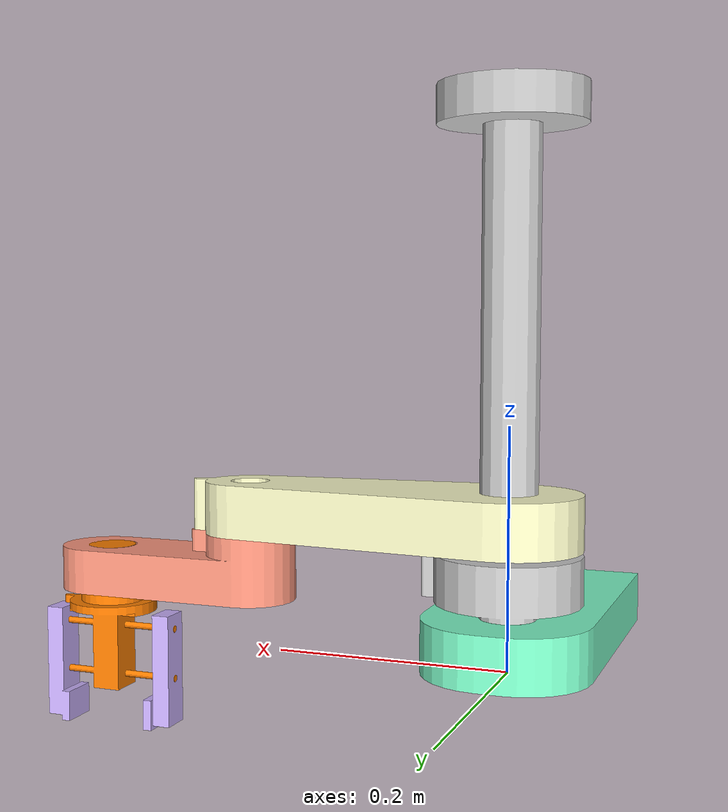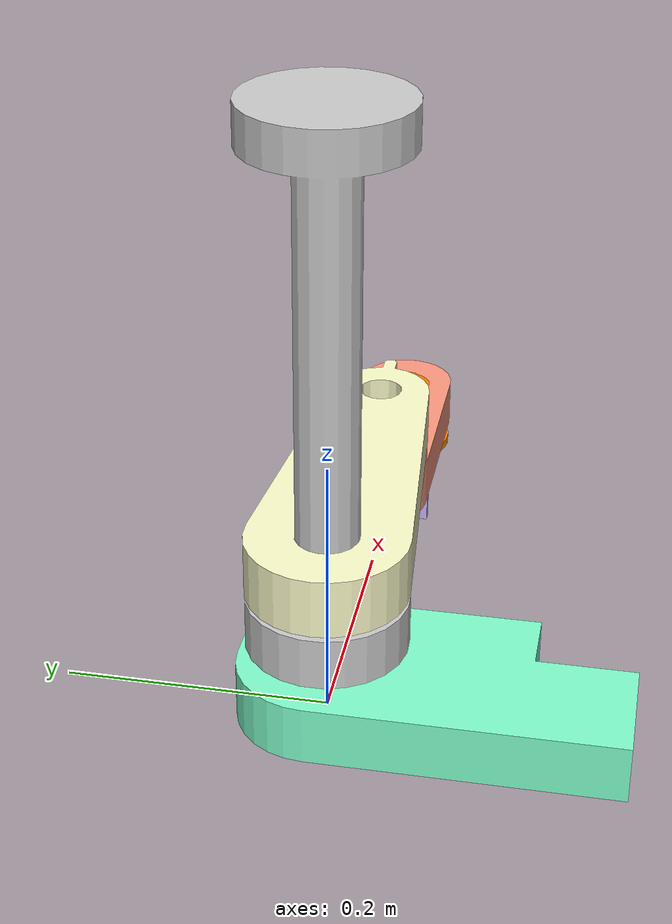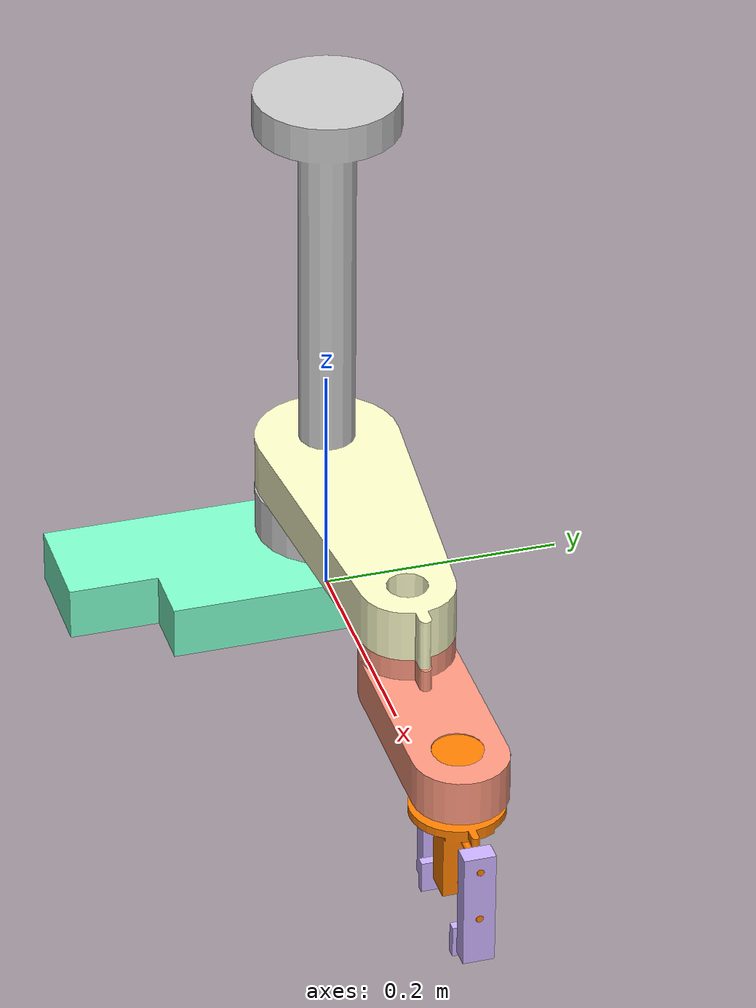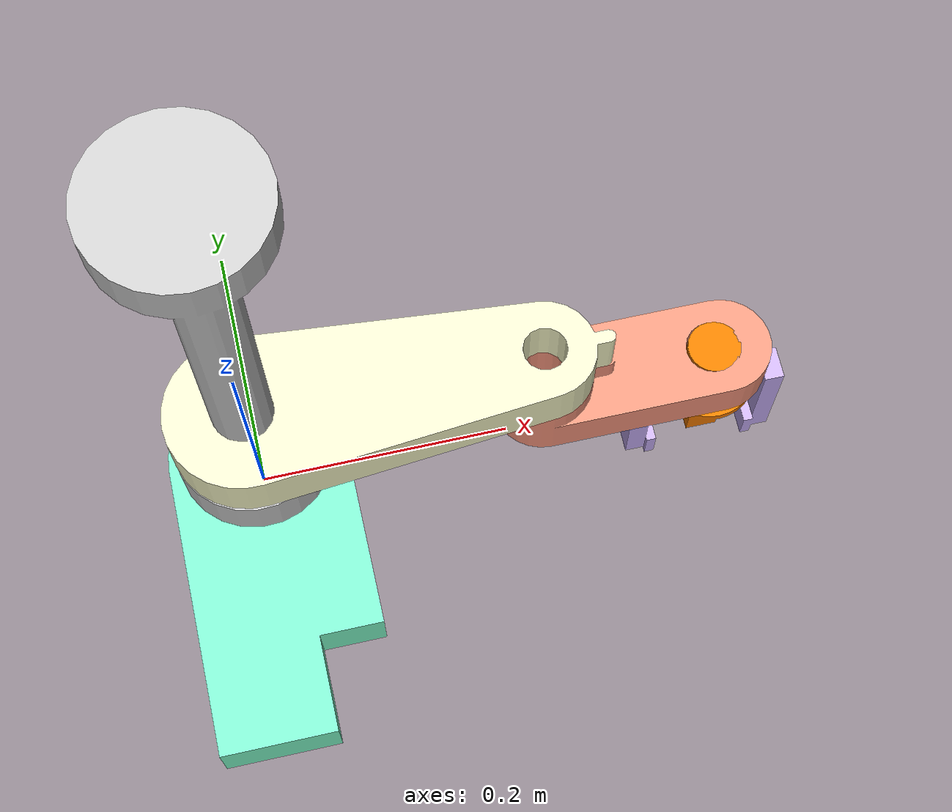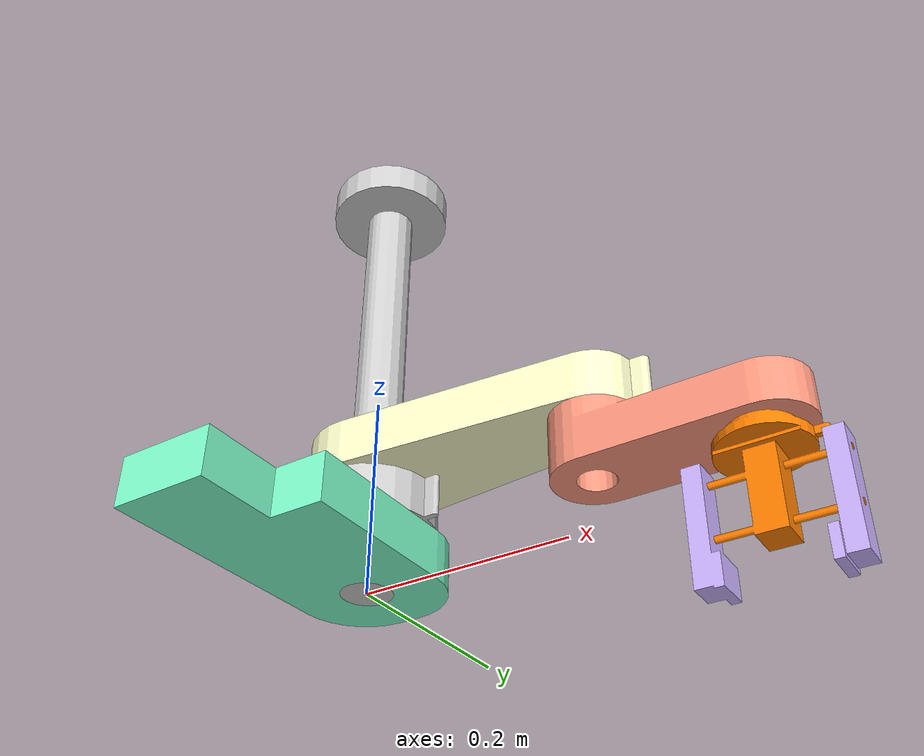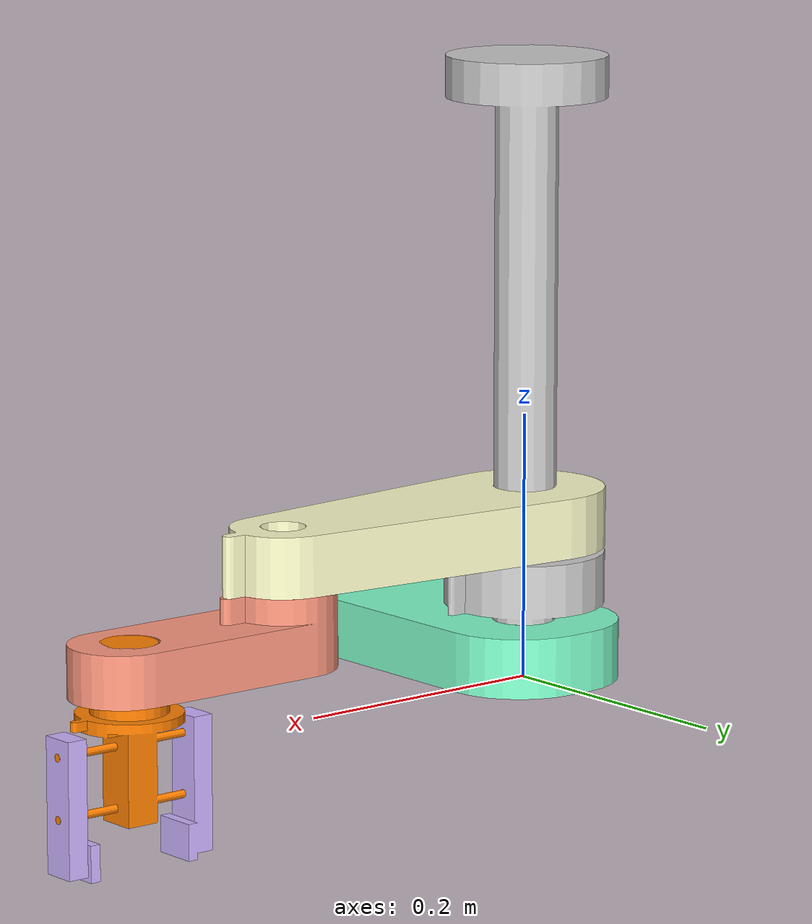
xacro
<?xml version="1.0" encoding="utf-8"?>
<robot xmlns:xacro="http://www.ros.org/wiki/xacro"
  name="Esamble_Sencillo_gripper">

  <!-- Link "mundo" para anclar el robot -->
  <link name="world" />

  <joint name="world_to_base_joint" type="fixed">
    <parent link="world" />
    <child link="base_link" />
    <origin xyz="0 0 0" rpy="0 0 0" />
  </joint>

  <link
    name="base_link">
    <inertial>
      <origin
        xyz="-0.0050268 -0.078183 -0.0225"
        rpy="0 0 0" />
      <mass
        value="1.5106" />
      <inertia
        ixx="0.0093016"
        ixy="-0.00083013"
        ixz="-7.7076E-20"
        iyy="0.0025817"
        iyz="-1.5891E-19"
        izz="0.011373" />
    </inertial>
    <visual>
      <origin
        xyz="0 -0.0425 0"
        rpy="1.57 0 0" />
      <geometry>
        <mesh
          filename="package://scara_description/meshes/base_link.STL" />
      </geometry>
      <material
        name="">
        <color
          rgba="0.5 1.0 0.8 1.0" />
      </material>
    </visual>
    <collision>
      <origin
        xyz="0 -0.0425 0"
        rpy="1.57 0 0" />
      <geometry>
        <mesh
          filename="package://scara_description/meshes/base_link.STL" />
      </geometry>
    </collision>
  </link>

  <link
    name="Revolute_1_Link">
    <inertial>
      <origin
        xyz="0.00013035 -6.9389E-18 0.14006"
        rpy="0 0 0" />
      <mass
        value="1.4899" />
      <inertia
        ixx="0.035352"
        ixy="-3.1241E-21"
        ixz="3.3345E-05"
        iyy="0.035365"
        iyz="1.3213E-18"
        izz="0.0016385" />
    </inertial>
    <visual>
      <origin
        xyz="0 -0.0425 -0.0525"
        rpy="1.57 0 0" />
      <geometry>
        <mesh
          filename="package://scara_description/meshes/Revolute_1_Link.STL" />
      </geometry>
      <material
        name="">
        <color
          rgba="0.8 0.8 0.8 1.0" />
      </material>
    </visual>
    <collision>
      <origin
        xyz="0 -0.0425 -0.0525"
        rpy="1.57 0 0" />
      <geometry>
        <mesh
          filename="package://scara_description/meshes/Revolute_1_Link.STL" />
      </geometry>
    </collision>
  </link>

  <joint
    name="Revolute_1_Jint"
    type="revolute">
    <origin
      xyz="0 0 0.0525"
      rpy="0 0 0" />
    <parent
      link="base_link" />
    <child
      link="Revolute_1_Link" />
    <axis
      xyz="0 0 1" />
  <limit lower="-3.1415" upper="3.1415" effort="10" velocity="1.0" />
  </joint>

  <link
    name="Prismatic_1_link">
    <inertial>
      <origin
        xyz="0.094766 0 0.0225"
        rpy="0 0 0" />
      <mass
        value="1.2694" />
      <inertia
        ixx="0.0013484"
        ixy="5.6661E-19"
        ixz="5.1896E-20"
        iyy="0.009623"
        iyz="-2.4505E-22"
        izz="0.010543" />
    </inertial>
    <visual>
      <origin
        xyz="0 -0.0425 -0.3"
        rpy="1.57 0 0" />
      <geometry>
        <mesh
          filename="package://scara_description/meshes/Prismatic_1_link.STL" />
      </geometry>
      <material
        name="">
        <color
          rgba="1.0 1.0 0.8 1.0" />
      </material>
    </visual>
    <collision>
      <origin
        xyz="0 -0.0425 -0.3"
        rpy="1.57 0 0" />
      <geometry>
        <mesh
          filename="package://scara_description/meshes/Prismatic_1_link.STL" />
      </geometry>
    </collision>
  </link>
  <joint
    name="Prismatic_1_Joint"
    type="prismatic">
    <origin
      xyz="0 0 0.0525"
      rpy="0 0 0" />
    <parent
      link="Revolute_1_Link" />
    <child
      link="Prismatic_1_link" />
    <axis
      xyz="0 0 1" />
    <limit
      lower="0"
      upper="0.254"
      effort="0"
      velocity="0" />
  </joint>
  <link
    name="Revolute_2_Link">
    <inertial>
      <origin
        xyz="0.061686 -6.9389E-18 -0.015864"
        rpy="0 0 0" />
      <mass
        value="0.61164" />
      <inertia
        ixx="0.00044425"
        ixy="2.8532E-20"
        ixz="0.00013287"
        iyy="0.0022992"
        iyz="-1.7404E-20"
        izz="0.0024904" />
    </inertial>
    <visual>
      <origin
        xyz="-0.228 -0.0425 -0.281"
        rpy="1.57 0 0" />
      <geometry>
        <mesh
          filename="package://scara_description/meshes/Revolute_2_Link.STL" />
      </geometry>
      <material
        name="">
        <color
          rgba="1.0 0.6 0.5 1.0" />
      </material>
    </visual>
    <collision>
      <origin
        xyz="-0.228 -0.0425 -0.281"
        rpy="1.57 0 0" />
      <geometry>
        <mesh
          filename="package://scara_description/meshes/Revolute_2_Link.STL" />
      </geometry>
    </collision>
  </link>
  <joint
    name="Revolute_2_Joint"
    type="revolute">
    <origin
      xyz="0.228 0 -0.019"
      rpy="0 0 0" />
    <parent
      link="Prismatic_1_link" />
    <child
      link="Revolute_2_Link" />
    <axis
      xyz="0 0 1" />
    <limit lower="-3.1415" upper="3.1415" effort="10" velocity="1.0" />
  </joint>
  <link
    name="Revolute_3_Link">
    <inertial>
      <origin
        xyz="0.00011013 0 0.0012399"
        rpy="0 0 0" />
      <mass
        value="0.18414" />
      <inertia
        ixx="0.00022791"
        ixy="-9.8815E-22"
        ixz="7.5358E-09"
        iyy="0.00023992"
        iyz="-5.115E-21"
        izz="7.1114E-05" />
    </inertial>
    <visual>
      <origin
        xyz="-0.363 -0.0425 -0.224"
        rpy="1.57 0 0" />
      <geometry>
        <mesh
          filename="package://scara_description/meshes/Revolute_3_Link.STL" />
      </geometry>
      <material
        name="">
        <color
          rgba="1.0 0.5 0.0 1.0" />
      </material>
    </visual>
    <collision>
      <origin
        xyz="-0.363 -0.0425 -0.224"
        rpy="1.57 0 0" />
      <geometry>
        <mesh
          filename="package://scara_description/meshes/Revolute_3_Link.STL" />
      </geometry>
    </collision>
  </link>

  <joint
    name="Revolute_3_Joint"
    type="revolute">
    <origin
      xyz="0.1365 0 -0.057"
      rpy="0 0 0" />
    <parent
      link="Revolute_2_Link" />
    <child
      link="Revolute_3_Link" />
    <axis
      xyz="0 0 -1" />
    <limit lower="-3.1415" upper="3.1415" effort="10" velocity="1.0" />
  </joint>

  <link
    name="Griper_Left_Link">
    <inertial>
      <origin
        xyz="0.033773 1.3878E-17 -0.014211"
        rpy="0 0 0" />
      <mass
        value="0.047823" />
      <inertia
        ixx="4.7679E-06"
        ixy="-1.7177E-20"
        ixz="2.8888E-06"
        iyy="4.5792E-05"
        iyz="9.5566E-22"
        izz="4.7001E-05" />
    </inertial>
    <visual>
      <origin
        xyz="-0.1315 -0.0425 0.326"
        rpy="1.57 1.57 0" />
      <geometry>
        <mesh
          filename="package://scara_description/meshes/Griper_Left_Link.STL" />
      </geometry>
      <material
        name="">
        <color
          rgba="0.8 0.7 1.0 1.0" />
      </material>
    </visual>
    <collision>
      <origin
        xyz="-0.1315 -0.0425 0.326"
        rpy="1.57 1.57 0" />
      <geometry>
        <mesh
          filename="package://scara_description/meshes/Griper_Left_Link.STL" />
      </geometry>
    </collision>
  </link>

  <joint
    name="Gripper_Left_Joint"
    type="prismatic">
    <origin
      xyz="-0.03775 0 -0.0925"
      rpy="-1.5708 -1.5708 1.5708" />
    <parent
      link="Revolute_3_Link" />
    <child
      link="Griper_Left_Link" />
    <axis
      xyz="0 0 -1" />
    <limit
      lower="0"
      upper="0.033"
      effort="0"
      velocity="0" />
  </joint>

  <link
    name="Gripper_Right_Link">
    <inertial>
      <origin
        xyz="0 0.033773 -0.014211"
        rpy="0 0 0" />
      <mass
        value="0.047823" />
      <inertia
        ixx="4.5792E-05"
        ixy="1.3317E-20"
        ixz="-1.1452E-21"
        iyy="4.7679E-06"
        iyz="2.8888E-06"
        izz="4.7001E-05" />
    </inertial>
    <visual>
      <origin
        xyz="0.0425 -0.131 0.40"
        rpy="0 1.57 0" />
      <geometry>
        <mesh
          filename="package://scara_description/meshes/Gripper_Right_Link.STL" />
      </geometry>
      <material
        name="">
        <color
          rgba="0.8 0.7 1.0 1.0" />
      </material>
    </visual>
    <collision>
      <origin
        xyz="0.0425 -0.131 0.40"
        rpy="0 1.57 0" />
      <geometry>
        <mesh
          filename="package://scara_description/meshes/Gripper_Right_Link.STL" />
      </geometry>
    </collision>
  </link>
  <joint
    name="Gripper_Right_Joint"
    type="prismatic">
    <origin
      xyz="0.03775 0 -0.093"
      rpy="1.5708 0 -1.5708" />
    <parent
      link="Revolute_3_Link" />
    <child
      link="Gripper_Right_Link" />
    <axis
      xyz="0 0 1" />
    <limit
      lower="0"
      upper="0.033"
      effort="0"
      velocity="0" />
  </joint>

  <!-- ========= INICIO DE LA SECCIÓN CORREGIDA ========= -->
  <!-- Importar la configuración de ros2_control desde el paquete de MoveIt -->
  <xacro:include filename="$(find scara_moveit_config)/config/Esamble_Sencillo_gripper.ros2_control.xacro" />

  <!-- Instanciar la macro definida en el archivo importado -->
  <xacro:Esamble_Sencillo_gripper_ros2_control name="GazeboSim" initial_positions_file="$(find scara_moveit_config)/config/initial_positions.yaml"/>
  <!-- ========= FIN DE LA SECCIÓN CORREGIDA ========= -->

</robot>
